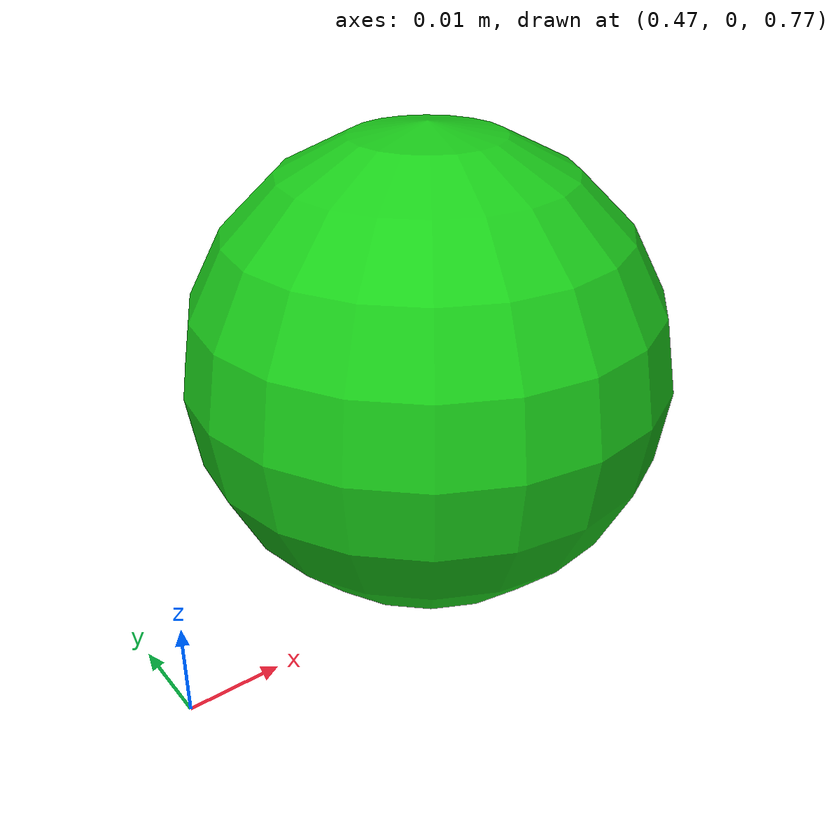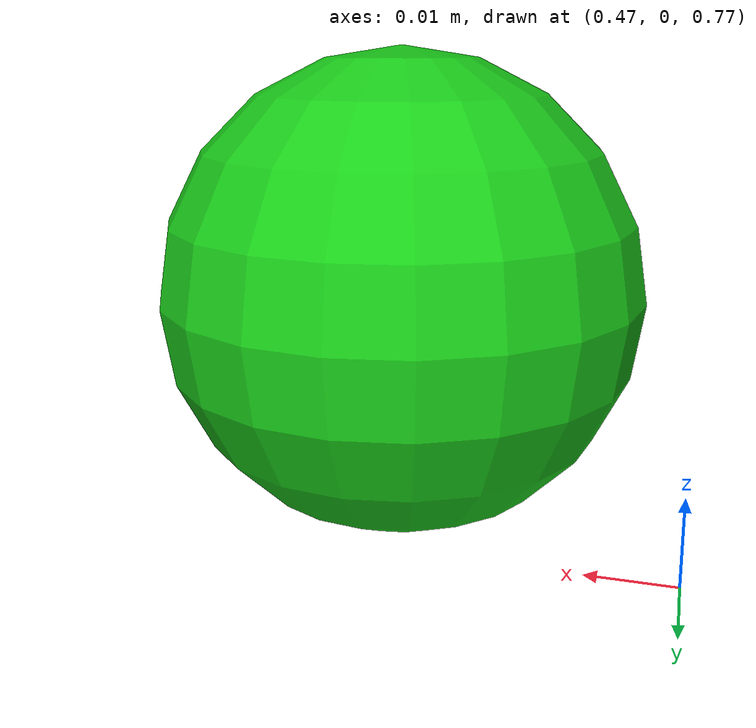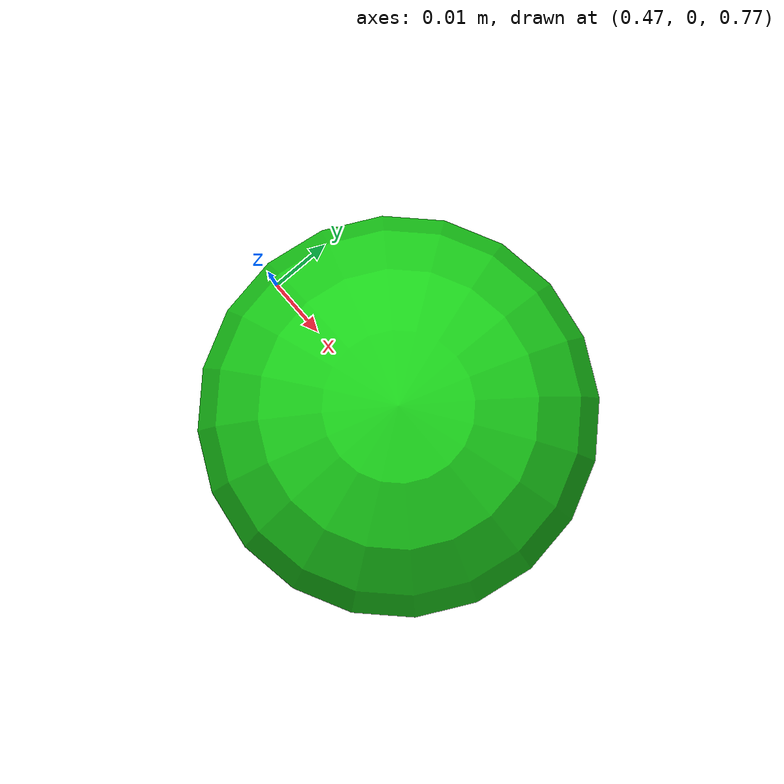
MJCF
<?xml version="1.0"?>
<mujoco>
    <compiler angle="radian"/>
    <size njmax="1000" nconmax="400"/>
    <asset>
        <texture type="skybox" builtin="gradient" rgb1="1 1 1" rgb2="0.6 0.8 1" width="256" height="256"/>
    </asset>
    <worldbody>
        <light name="scene_directional_light" directional="true" castshadow="false" cutoff="4" exponent="20"
               diffuse="1 1 1" specular="0 0 0" pos=".9 .3 2.5"/>
        <body name="target" pos="0.5 0.0 0.8">
            <geom name="target" type="sphere" size="0.025" rgba="0.1 0.8 0.1 1.0"/>
        </body>
        <body name="target-plane" pos="0.5 0.0 0.8">
            <geom name="target-plane" type="box" size="0.005 0.3 0.3" rgba="0.1 0.8 0.1 0.0"/>
        </body>
    </worldbody>
</mujoco>
